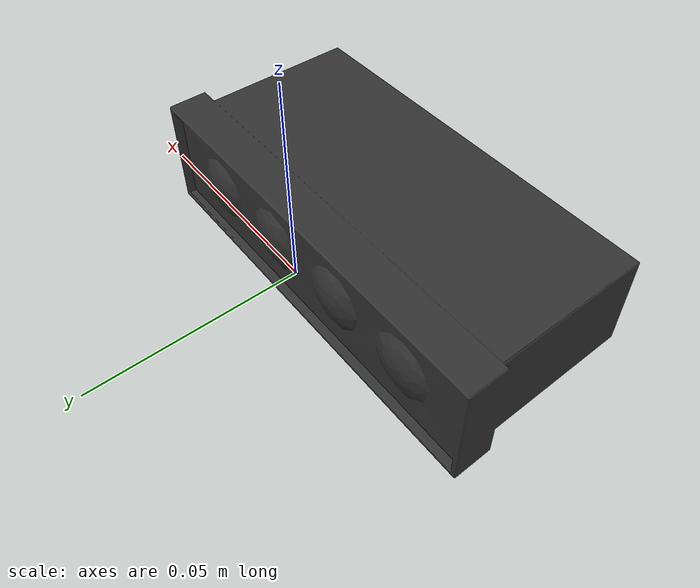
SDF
<?xml version="1.0" ?>
<sdf version="1.6">
  <model name="camera">
    <static>true</static>
    <link name="link">
      <visual name="cam_visual">
        <geometry>
          <mesh>
            <uri>model://camera/meshes/camera.dae</uri>
            <scale>0.01 0.01 0.01</scale>
          </mesh>
        </geometry>
      </visual>

      <collision name="cam_collision">
        <pose>0 -0.025 0.0 0 0 0</pose>
        <geometry>
          <box>
            <size>0.105 0.05 0.03</size>
          </box>
        </geometry>
      </collision>

    </link>
  </model>
</sdf>
